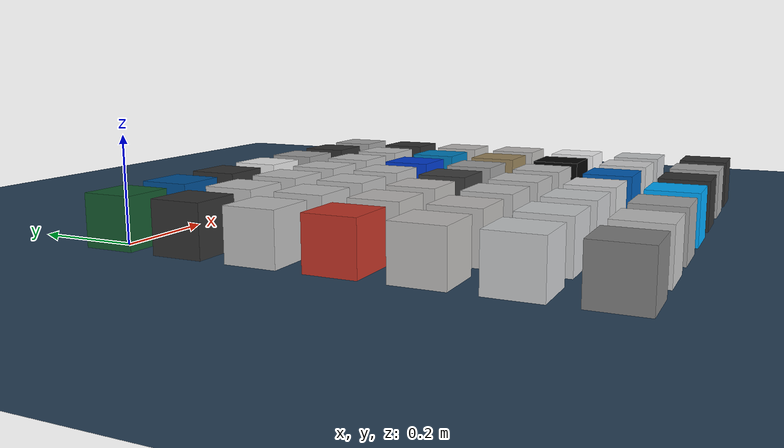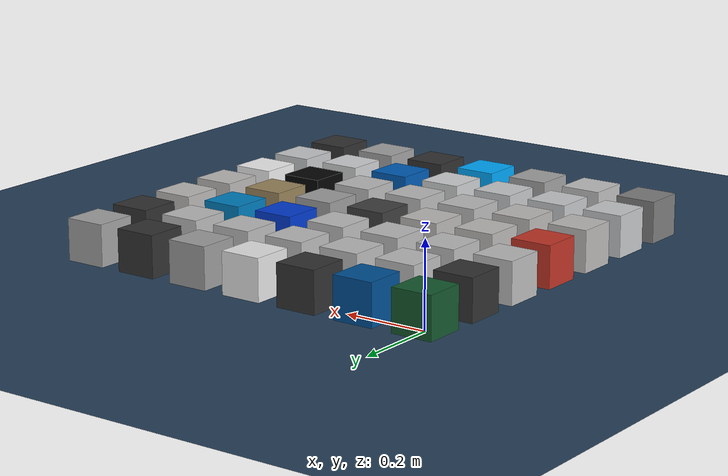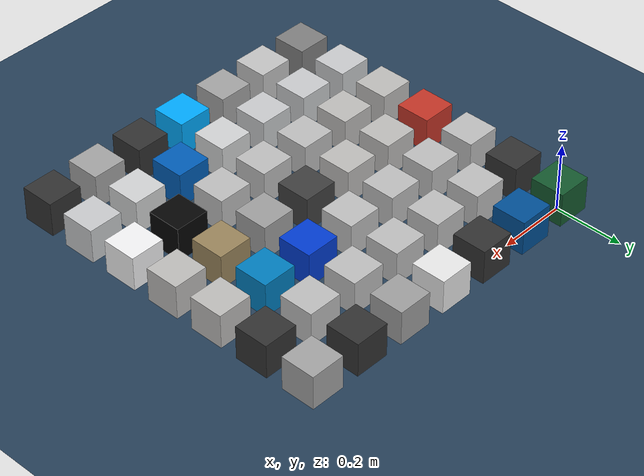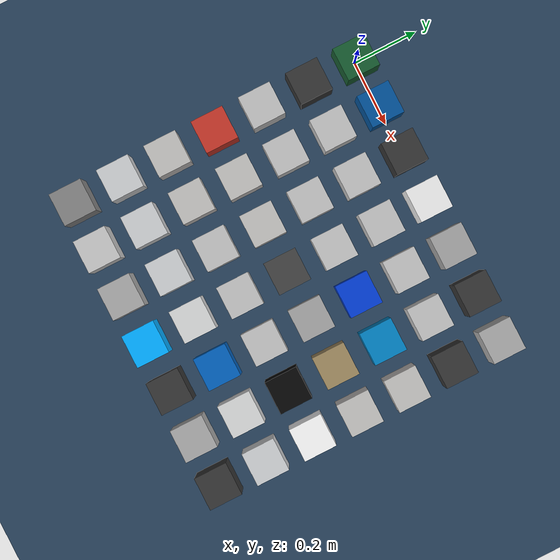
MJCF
<?xml version="1.0" ?>
<mujoco model="material_swatches">
  <visual>
    <headlight ambient="0.4 0.4 0.4" diffuse="0.6 0.6 0.6"/>
  </visual>
  <asset>
    <material name="green_pcb" rgba="0.08 0.35 0.18 1" specular="0.4" shininess="0.3" reflectance="0.1"/>
    <material name="bracket_material" rgba="0.196078 0.196078 0.196078 1"/>
    <material name="battery_pack_material" rgba="0 0.313725 0.588235 1"/>
    <material name="camera_stand_material" rgba="0.196078 0.196078 0.196078 1"/>
    <material name="acrylic_body_material" rgba="0.917647 0.917647 0.917647 1"/>
    <material name="motor_driver_material" rgba="0.627451 0.627451 0.627451 1"/>
    <material name="caster_block_material" rgba="0.196078 0.196078 0.196078 1"/>
    <material name="caster_wheel_base_material" rgba="0.647059 0.647059 0.647059 1"/>
    <material name="battery_holder_material" rgba="0.196078 0.196078 0.196078 1"/>
    <material name="microchip_2_material" rgba="0.74902 0.74902 0.74902 1"/>
    <material name="transistor_3_leg2_2_material" rgba="0.74902 0.74902 0.74902 1"/>
    <material name="resistor1_2_material" rgba="0.74902 0.74902 0.74902 1"/>
    <material name="resistor2_32_2_material" rgba="0.74902 0.74902 0.74902 1"/>
    <material name="tanchip_2_material" rgba="0.74902 0.74902 0.74902 1"/>
    <material name="pcb_material" rgba="0.196078 0.196078 0.196078 1"/>
    <material name="transistor_3_leg_2_material" rgba="0.74902 0.74902 0.74902 1"/>
    <material name="rectangularchip_2_material" rgba="0.74902 0.74902 0.74902 1"/>
    <material name="wifi_card_2_material" rgba="0.74902 0.74902 0.74902 1"/>
    <material name="3_digit_7_segment_display__lm2596_buck_converter_4_0_40_to_1_3_37v__lpattern3_material" rgba="0.752941 0.752941 0.752941 1"/>
    <material name="trimpot_3296w__lm2596_buck_converter_4_0_40_to_1_3_37v_valor_predeterminado__ressalto_extruso3_material" rgba="0.00392157 0.235294 0.823529 1"/>
    <material name="base___lm2596_buck_converter_4_0_40_to_1_3_37v__mirror2_material" rgba="0 0.498039 0.752941 1"/>
    <material name="gear_box_bottom_1__body1_material" rgba="0.74902 0.741176 0.733333 1"/>
    <material name="pcb_1__body1_material" rgba="0.768627 0.207843 0.152941 1"/>
    <material name="gear_box_top_1__body1_material" rgba="0.74902 0.741176 0.733333 1"/>
    <material name="shaft_1__body1_material" rgba="0.74902 0.741176 0.733333 1"/>
    <material name="magnet_1__body1_material" rgba="0.247059 0.247059 0.247059 1"/>
    <material name="92000a001_passivated_18_8_stainless_steel_pan_head_phillips_screws_1__body1_material" rgba="0.627451 0.627451 0.627451 1"/>
    <material name="rotor_holding_1__body1_material" rgba="0.607843 0.52549 0.364706 1"/>
    <material name="motor_1__body1_material" rgba="0.74902 0.741176 0.733333 1"/>
    <material name="gear_box_center_1__body1_material" rgba="0.74902 0.741176 0.733333 1"/>
    <material name="rotor_1__body1_material" rgba="0.74902 0.741176 0.733333 1"/>
    <material name="usb_socket_2_material" rgba="0.74902 0.74902 0.74902 1"/>
    <material name="usb_socket_2__2_material" rgba="0.74902 0.74902 0.74902 1"/>
    <material name="usb_socket_2__3_material" rgba="0.74902 0.74902 0.74902 1"/>
    <material name="buttonflash_13_2_material" rgba="0.0196078 0.0196078 0.0196078 1"/>
    <material name="buttonflash_14_2_material" rgba="0.960784 0.960784 0.964706 1"/>
    <material name="dg301_5_0_02__lm2596_buck_converter_4_0_40_to_1_3_37v__imported_3_2_solid1_material" rgba="0.792157 0.8 0.807843 1"/>
    <material name="dg301_5_0_02__lm2596_buck_converter_4_0_40_to_1_3_37v__imported_3_1_solid1_material" rgba="0.792157 0.8 0.807843 1"/>
    <material name="dg301_5_0_02__lm2596_buck_converter_4_0_40_to_1_3_37v__imported_4_2_solid1_material" rgba="0.792157 0.8 0.807843 1"/>
    <material name="dg301_5_0_02__lm2596_buck_converter_4_0_40_to_1_3_37v__imported_2_2_solid1_material" rgba="0.827451 0.831373 0.835294 1"/>
    <material name="dg301_5_0_02__lm2596_buck_converter_4_0_40_to_1_3_37v__imported_1_solid1_material" rgba="0 0.368627 0.721569 1"/>
    <material name="dg301_5_0_02__lm2596_buck_converter_4_0_40_to_1_3_37v__imported_2_1_solid1_material" rgba="0.827451 0.831373 0.835294 1"/>
    <material name="dg301_5_0_02__lm2596_buck_converter_4_0_40_to_1_3_37v__imported_4_1_solid1_material" rgba="0.792157 0.8 0.807843 1"/>
    <material name="220_35v_capacitor__lm2596_buck_converter_4_0_40_to_1_3_37v__chamfer1_material" rgba="0.501961 0.501961 0.501961 1"/>
    <material name="220_35v_capacitor__lm2596_buck_converter_4_0_40_to_1_3_37v__fillet2_material" rgba="0.768627 0.768627 0.768627 1"/>
    <material name="tire_material" rgba="0.647059 0.647059 0.647059 1"/>
    <material name="wheel_material" rgba="0 0.670588 1 1"/>
    <material name="camera_holder_material" rgba="0.196078 0.196078 0.196078 1"/>
    <material name="caster_wheel_holder_material" rgba="0.647059 0.647059 0.647059 1"/>
    <material name="caster_wheel_material" rgba="0.196078 0.196078 0.196078 1"/>
    <texture type="skybox" builtin="gradient" rgb1="0.3 0.5 0.7" rgb2="0 0 0" width="512" height="512"/>
    <texture name="grid" type="2d" builtin="checker" rgb1="0.2 0.3 0.4" rgb2="0.1 0.2 0.3" width="512" height="512"/>
    <material name="grid_mat" texture="grid" texrepeat="10 10" reflectance="0.2"/>
  </asset>
  <worldbody>
    <light pos="0 0 3" dir="0 0 -1" diffuse="1 1 1"/>
    <geom name="floor" type="plane" size="3 3 0.1" material="grid_mat"/>
    <body name="bracket_material" pos="0.000 0.000 0.05">
      <geom name="green_pcb" type="box" size="0.05 0.05 0.05" material="green_pcb"/>
    </body>
    <body name="battery_pack_material" pos="0.150 0.000 0.05">
      <geom name="battery_pack_material_geom" type="box" size="0.05 0.05 0.05" material="battery_pack_material"/>
    </body>
    <body name="camera_stand_material" pos="0.300 0.000 0.05">
      <geom name="camera_stand_material_geom" type="box" size="0.05 0.05 0.05" material="camera_stand_material"/>
    </body>
    <body name="acrylic_body_material" pos="0.450 0.000 0.05">
      <geom name="acrylic_body_material_geom" type="box" size="0.05 0.05 0.05" material="acrylic_body_material"/>
    </body>
    <body name="motor_driver_material" pos="0.600 0.000 0.05">
      <geom name="motor_driver_material_geom" type="box" size="0.05 0.05 0.05" material="motor_driver_material"/>
    </body>
    <body name="caster_block_material" pos="0.750 0.000 0.05">
      <geom name="caster_block_material_geom" type="box" size="0.05 0.05 0.05" material="caster_block_material"/>
    </body>
    <body name="caster_wheel_base_material" pos="0.900 0.000 0.05">
      <geom name="caster_wheel_base_material_geom" type="box" size="0.05 0.05 0.05" material="caster_wheel_base_material"/>
    </body>
    <body name="battery_holder_material" pos="0.000 -0.150 0.05">
      <geom name="battery_holder_material_geom" type="box" size="0.05 0.05 0.05" material="battery_holder_material"/>
    </body>
    <body name="microchip_2_material" pos="0.150 -0.150 0.05">
      <geom name="microchip_2_material_geom" type="box" size="0.05 0.05 0.05" material="microchip_2_material"/>
    </body>
    <body name="transistor_3_leg2_2_material" pos="0.300 -0.150 0.05">
      <geom name="transistor_3_leg2_2_material_geom" type="box" size="0.05 0.05 0.05" material="transistor_3_leg2_2_material"/>
    </body>
    <body name="resistor1_2_material" pos="0.450 -0.150 0.05">
      <geom name="resistor1_2_material_geom" type="box" size="0.05 0.05 0.05" material="resistor1_2_material"/>
    </body>
    <body name="resistor2_32_2_material" pos="0.600 -0.150 0.05">
      <geom name="resistor2_32_2_material_geom" type="box" size="0.05 0.05 0.05" material="resistor2_32_2_material"/>
    </body>
    <body name="tanchip_2_material" pos="0.750 -0.150 0.05">
      <geom name="tanchip_2_material_geom" type="box" size="0.05 0.05 0.05" material="tanchip_2_material"/>
    </body>
    <body name="pcb_material" pos="0.900 -0.150 0.05">
      <geom name="pcb_material_geom" type="box" size="0.05 0.05 0.05" material="pcb_material"/>
    </body>
    <body name="transistor_3_leg_2_material" pos="0.000 -0.300 0.05">
      <geom name="transistor_3_leg_2_material_geom" type="box" size="0.05 0.05 0.05" material="transistor_3_leg_2_material"/>
    </body>
    <body name="rectangularchip_2_material" pos="0.150 -0.300 0.05">
      <geom name="rectangularchip_2_material_geom" type="box" size="0.05 0.05 0.05" material="rectangularchip_2_material"/>
    </body>
    <body name="wifi_card_2_material" pos="0.300 -0.300 0.05">
      <geom name="wifi_card_2_material_geom" type="box" size="0.05 0.05 0.05" material="wifi_card_2_material"/>
    </body>
    <body name="3_digit_7_segment_display__lm2596_buck_converter_4_0_40_to_1_3_37v__lpattern3_material" pos="0.450 -0.300 0.05">
      <geom name="3_digit_7_segment_display__lm2596_buck_converter_4_0_40_to_1_3_37v__lpattern3_material_geom" type="box" size="0.05 0.05 0.05" material="3_digit_7_segment_display__lm2596_buck_converter_4_0_40_to_1_3_37v__lpattern3_material"/>
    </body>
    <body name="trimpot_3296w__lm2596_buck_converter_4_0_40_to_1_3_37v_valor_predeterminado__ressalto_extruso3_material" pos="0.600 -0.300 0.05">
      <geom name="trimpot_3296w__lm2596_buck_converter_4_0_40_to_1_3_37v_valor_predeterminado__ressalto_extruso3_material_geom" type="box" size="0.05 0.05 0.05" material="trimpot_3296w__lm2596_buck_converter_4_0_40_to_1_3_37v_valor_predeterminado__ressalto_extruso3_material"/>
    </body>
    <body name="base___lm2596_buck_converter_4_0_40_to_1_3_37v__mirror2_material" pos="0.750 -0.300 0.05">
      <geom name="base___lm2596_buck_converter_4_0_40_to_1_3_37v__mirror2_material_geom" type="box" size="0.05 0.05 0.05" material="base___lm2596_buck_converter_4_0_40_to_1_3_37v__mirror2_material"/>
    </body>
    <body name="gear_box_bottom_1__body1_material" pos="0.900 -0.300 0.05">
      <geom name="gear_box_bottom_1__body1_material_geom" type="box" size="0.05 0.05 0.05" material="gear_box_bottom_1__body1_material"/>
    </body>
    <body name="pcb_1__body1_material" pos="0.000 -0.450 0.05">
      <geom name="pcb_1__body1_material_geom" type="box" size="0.05 0.05 0.05" material="pcb_1__body1_material"/>
    </body>
    <body name="gear_box_top_1__body1_material" pos="0.150 -0.450 0.05">
      <geom name="gear_box_top_1__body1_material_geom" type="box" size="0.05 0.05 0.05" material="gear_box_top_1__body1_material"/>
    </body>
    <body name="shaft_1__body1_material" pos="0.300 -0.450 0.05">
      <geom name="shaft_1__body1_material_geom" type="box" size="0.05 0.05 0.05" material="shaft_1__body1_material"/>
    </body>
    <body name="magnet_1__body1_material" pos="0.450 -0.450 0.05">
      <geom name="magnet_1__body1_material_geom" type="box" size="0.05 0.05 0.05" material="magnet_1__body1_material"/>
    </body>
    <body name="92000a001_passivated_18_8_stainless_steel_pan_head_phillips_screws_1__body1_material" pos="0.600 -0.450 0.05">
      <geom name="92000a001_passivated_18_8_stainless_steel_pan_head_phillips_screws_1__body1_material_geom" type="box" size="0.05 0.05 0.05" material="92000a001_passivated_18_8_stainless_steel_pan_head_phillips_screws_1__body1_material"/>
    </body>
    <body name="rotor_holding_1__body1_material" pos="0.750 -0.450 0.05">
      <geom name="rotor_holding_1__body1_material_geom" type="box" size="0.05 0.05 0.05" material="rotor_holding_1__body1_material"/>
    </body>
    <body name="motor_1__body1_material" pos="0.900 -0.450 0.05">
      <geom name="motor_1__body1_material_geom" type="box" size="0.05 0.05 0.05" material="motor_1__body1_material"/>
    </body>
    <body name="gear_box_center_1__body1_material" pos="0.000 -0.600 0.05">
      <geom name="gear_box_center_1__body1_material_geom" type="box" size="0.05 0.05 0.05" material="gear_box_center_1__body1_material"/>
    </body>
    <body name="rotor_1__body1_material" pos="0.150 -0.600 0.05">
      <geom name="rotor_1__body1_material_geom" type="box" size="0.05 0.05 0.05" material="rotor_1__body1_material"/>
    </body>
    <body name="usb_socket_2_material" pos="0.300 -0.600 0.05">
      <geom name="usb_socket_2_material_geom" type="box" size="0.05 0.05 0.05" material="usb_socket_2_material"/>
    </body>
    <body name="usb_socket_2__2_material" pos="0.450 -0.600 0.05">
      <geom name="usb_socket_2__2_material_geom" type="box" size="0.05 0.05 0.05" material="usb_socket_2__2_material"/>
    </body>
    <body name="usb_socket_2__3_material" pos="0.600 -0.600 0.05">
      <geom name="usb_socket_2__3_material_geom" type="box" size="0.05 0.05 0.05" material="usb_socket_2__3_material"/>
    </body>
    <body name="buttonflash_13_2_material" pos="0.750 -0.600 0.05">
      <geom name="buttonflash_13_2_material_geom" type="box" size="0.05 0.05 0.05" material="buttonflash_13_2_material"/>
    </body>
    <body name="buttonflash_14_2_material" pos="0.900 -0.600 0.05">
      <geom name="buttonflash_14_2_material_geom" type="box" size="0.05 0.05 0.05" material="buttonflash_14_2_material"/>
    </body>
    <body name="dg301_5_0_02__lm2596_buck_converter_4_0_40_to_1_3_37v__imported_3_2_solid1_material" pos="0.000 -0.750 0.05">
      <geom name="dg301_5_0_02__lm2596_buck_converter_4_0_40_to_1_3_37v__imported_3_2_solid1_material_geom" type="box" size="0.05 0.05 0.05" material="dg301_5_0_02__lm2596_buck_converter_4_0_40_to_1_3_37v__imported_3_2_solid1_material"/>
    </body>
    <body name="dg301_5_0_02__lm2596_buck_converter_4_0_40_to_1_3_37v__imported_3_1_solid1_material" pos="0.150 -0.750 0.05">
      <geom name="dg301_5_0_02__lm2596_buck_converter_4_0_40_to_1_3_37v__imported_3_1_solid1_material_geom" type="box" size="0.05 0.05 0.05" material="dg301_5_0_02__lm2596_buck_converter_4_0_40_to_1_3_37v__imported_3_1_solid1_material"/>
    </body>
    <body name="dg301_5_0_02__lm2596_buck_converter_4_0_40_to_1_3_37v__imported_4_2_solid1_material" pos="0.300 -0.750 0.05">
      <geom name="dg301_5_0_02__lm2596_buck_converter_4_0_40_to_1_3_37v__imported_4_2_solid1_material_geom" type="box" size="0.05 0.05 0.05" material="dg301_5_0_02__lm2596_buck_converter_4_0_40_to_1_3_37v__imported_4_2_solid1_material"/>
    </body>
    <body name="dg301_5_0_02__lm2596_buck_converter_4_0_40_to_1_3_37v__imported_2_2_solid1_material" pos="0.450 -0.750 0.05">
      <geom name="dg301_5_0_02__lm2596_buck_converter_4_0_40_to_1_3_37v__imported_2_2_solid1_material_geom" type="box" size="0.05 0.05 0.05" material="dg301_5_0_02__lm2596_buck_converter_4_0_40_to_1_3_37v__imported_2_2_solid1_material"/>
    </body>
    <body name="dg301_5_0_02__lm2596_buck_converter_4_0_40_to_1_3_37v__imported_1_solid1_material" pos="0.600 -0.750 0.05">
      <geom name="dg301_5_0_02__lm2596_buck_converter_4_0_40_to_1_3_37v__imported_1_solid1_material_geom" type="box" size="0.05 0.05 0.05" material="dg301_5_0_02__lm2596_buck_converter_4_0_40_to_1_3_37v__imported_1_solid1_material"/>
    </body>
    <body name="dg301_5_0_02__lm2596_buck_converter_4_0_40_to_1_3_37v__imported_2_1_solid1_material" pos="0.750 -0.750 0.05">
      <geom name="dg301_5_0_02__lm2596_buck_converter_4_0_40_to_1_3_37v__imported_2_1_solid1_material_geom" type="box" size="0.05 0.05 0.05" material="dg301_5_0_02__lm2596_buck_converter_4_0_40_to_1_3_37v__imported_2_1_solid1_material"/>
    </body>
    <body name="dg301_5_0_02__lm2596_buck_converter_4_0_40_to_1_3_37v__imported_4_1_solid1_material" pos="0.900 -0.750 0.05">
      <geom name="dg301_5_0_02__lm2596_buck_converter_4_0_40_to_1_3_37v__imported_4_1_solid1_material_geom" type="box" size="0.05 0.05 0.05" material="dg301_5_0_02__lm2596_buck_converter_4_0_40_to_1_3_37v__imported_4_1_solid1_material"/>
    </body>
    <body name="220_35v_capacitor__lm2596_buck_converter_4_0_40_to_1_3_37v__chamfer1_material" pos="0.000 -0.900 0.05">
      <geom name="220_35v_capacitor__lm2596_buck_converter_4_0_40_to_1_3_37v__chamfer1_material_geom" type="box" size="0.05 0.05 0.05" material="220_35v_capacitor__lm2596_buck_converter_4_0_40_to_1_3_37v__chamfer1_material"/>
    </body>
    <body name="220_35v_capacitor__lm2596_buck_converter_4_0_40_to_1_3_37v__fillet2_material" pos="0.150 -0.900 0.05">
      <geom name="220_35v_capacitor__lm2596_buck_converter_4_0_40_to_1_3_37v__fillet2_material_geom" type="box" size="0.05 0.05 0.05" material="220_35v_capacitor__lm2596_buck_converter_4_0_40_to_1_3_37v__fillet2_material"/>
    </body>
    <body name="tire_material" pos="0.300 -0.900 0.05">
      <geom name="tire_material_geom" type="box" size="0.05 0.05 0.05" material="tire_material"/>
    </body>
    <body name="wheel_material" pos="0.450 -0.900 0.05">
      <geom name="wheel_material_geom" type="box" size="0.05 0.05 0.05" material="wheel_material"/>
    </body>
    <body name="camera_holder_material" pos="0.600 -0.900 0.05">
      <geom name="camera_holder_material_geom" type="box" size="0.05 0.05 0.05" material="camera_holder_material"/>
    </body>
    <body name="caster_wheel_holder_material" pos="0.750 -0.900 0.05">
      <geom name="caster_wheel_holder_material_geom" type="box" size="0.05 0.05 0.05" material="caster_wheel_holder_material"/>
    </body>
    <body name="caster_wheel_material" pos="0.900 -0.900 0.05">
      <geom name="caster_wheel_material_geom" type="box" size="0.05 0.05 0.05" material="caster_wheel_material"/>
    </body>
  </worldbody>
</mujoco>
